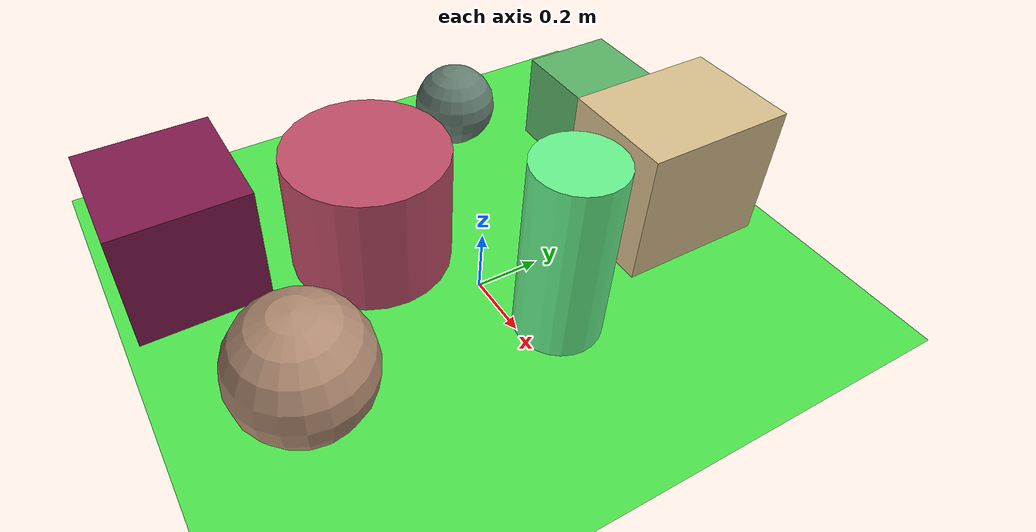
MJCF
<mujoco>
   <asset>
<texture type="skybox" builtin="gradient" rgb1="0.3 0.6 0.9" rgb2="0.2 0.9 0.5" width="256" height="256"/>
<texture name="gradient_0" builtin="gradient" rgb1="0.4 0.0 0.6" rgb2="0.6 0.2 0.0" width="200" height="200"/>
<texture name="checker_1" builtin="checker" type="2d" rgb1="0.2 0.0 0.5" rgb2="0.6 1.0 0.4" width="200" height="200"/>
<texture name="gradient_2" builtin="gradient" rgb1="0.7 0.9 0.6" rgb2="0.1 1.0 0.5" width="200" height="200"/>
<texture name="gradient_3" builtin="gradient" rgb1="0.9 0.5 0.9" rgb2="0.8 1.0 0.2" width="200" height="200"/>
<texture name="gradient_4" builtin="gradient" rgb1="0.6 0.4 0.8" rgb2="0.9 0.2 0.0" width="200" height="200"/>
<texture name="gradient_5" builtin="gradient" rgb1="0.5 0.4 0.1" rgb2="0.9 0.7 0.8" width="200" height="200"/>
<texture name="gradient_6" builtin="gradient" rgb1="0.4 0.8 0.6" rgb2="0.3 0.6 0.2" width="200" height="200"/><material name="gradient_0_mat" reflectance="0" texture="gradient_0" texuniform="true"/>
<material name="checker_1_mat" reflectance="0" texrepeat="8 8" texture="checker_1" texuniform="false" />
<material name="gradient_2_mat" reflectance="0" texture="gradient_2" texuniform="true"/>
<material name="gradient_3_mat" reflectance="0" texture="gradient_3" texuniform="true"/>
<material name="gradient_4_mat" reflectance="0" texture="gradient_4" texuniform="true"/>
<material name="gradient_5_mat" reflectance="0" texture="gradient_5" texuniform="true"/>
<material name="gradient_6_mat" reflectance="0" texture="gradient_6" texuniform="true"/>
   </asset>

   <worldbody>
      <light diffuse=".9 .9 .9" pos="0 0 3" dir="0 0 -1"/>
     <geom type="plane" size="1 1 0.1" rgba="0.3 0.9 0.3 1"/>
<geom type="box" pos="-0.46 -0.76 0.2" size="0.2 0.2 0.2" material="gradient_0_mat" />
<geom type="sphere" pos="-0.69 0.31 0.14" size="0.14 0.14 0.14" material="checker_1_mat" />
<geom type="cylinder" pos="0.23 0.12 0.29" size="0.13 0.29 0.29" material="gradient_2_mat" />
<geom type="box" pos="0.02 0.66 0.22" size="0.18 0.24 0.22" material="gradient_3_mat" />
<geom type="cylinder" pos="-0.29 -0.22 0.2" size="0.25 0.2 0.2" material="gradient_4_mat" />
<geom type="sphere" pos="0.18 -0.63 0.2" size="0.2 0.2 0.2" material="gradient_5_mat" />
<geom type="box" pos="-0.44 0.71 0.15" size="0.15 0.15 0.15" material="gradient_6_mat" /><camera euler="60 0 180" fovy="60" name="camera_a" pos="0 -1.5 1"></camera>   </worldbody>
</mujoco>
